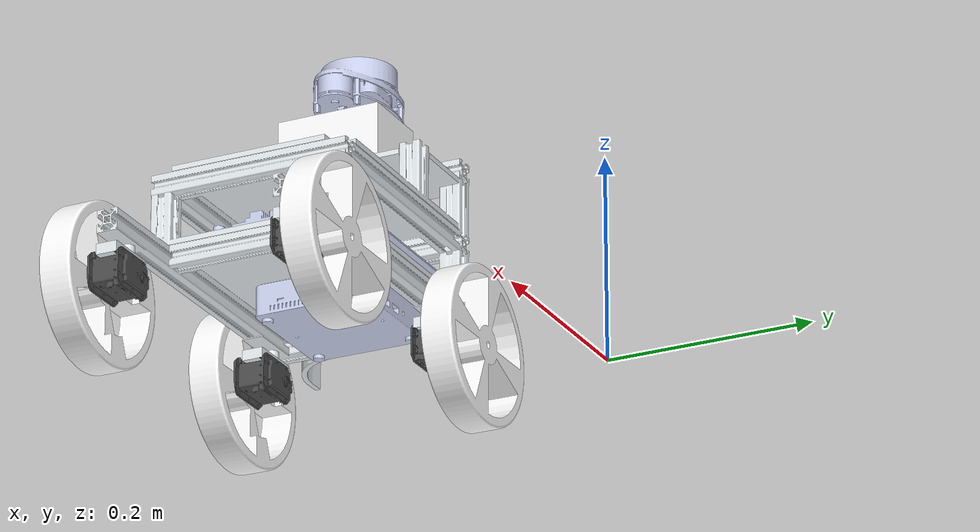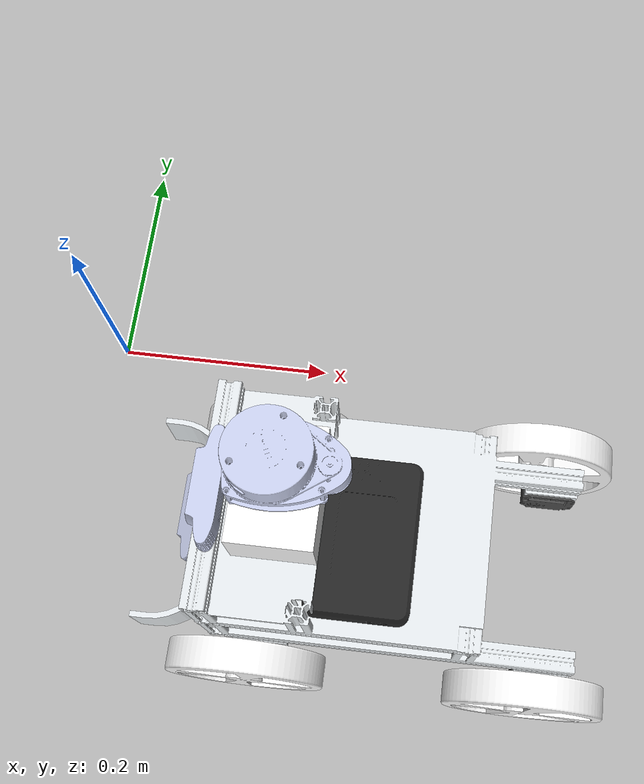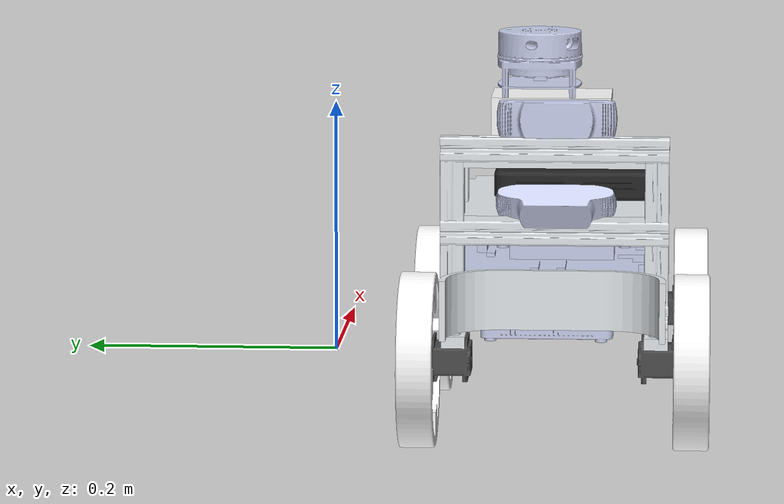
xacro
<?xml version="1.0" encoding="utf-8"?>
<robot
    name="model13" xmlns:xacro="http://ros.org/wiki/xacro">
  <xacro:arg name="camera_visual" default="false"/>
  <xacro:arg name="imu_visual"    default="false"/>

  <link name="base_footprint"/>

  <joint name="base_joint" type="fixed">
    <parent link="base_footprint"/>
    <child link="base_link" />
    <origin xyz="0 0 0.010" rpy="0 0 0"/>
  </joint>
  <link
    name="base_link">
    <inertial>
      <origin
        xyz="0.242554404351736 -0.171380969750206 0.047595679055481"
        rpy="0 0 0" />
      <mass
        value="1.682657590176" />
      <inertia
        ixx="0.00301207667908311"
        ixy="-5.22346847575621E-12"
        ixz="-3.07051462370208E-05"
        iyy="0.00535033223435682"
        iyz="1.30947753046905E-11"
        izz="0.00821505625174649" />
    </inertial>
    <visual>
      <origin
        xyz="0 0 0"
        rpy="0 0 0" />
      <geometry>
        <mesh
          filename="package://model13/meshes/base_link.STL" />
      </geometry>
      <material
        name="">
        <color
          rgba="0.898039215686275 0.917647058823529 0.929411764705882 1" />
      </material>
    </visual>
    <collision>
      <origin
        xyz="0 0 0"
        rpy="0 0 0" />
      <geometry>
        <mesh
          filename="package://model13/meshes/base_link.STL" />
      </geometry>
    </collision>
  </link>
  <link
    name="left_front_wheel_suspension">
    <inertial>
      <origin
        xyz="0.00153023333982277 -0.0049996602922521 5.55111512312578E-17"
        rpy="0 0 0" />
      <mass
        value="0.0239463719407107" />
      <inertia
        ixx="1.07207044697232E-06"
        ixy="-6.47020675138978E-21"
        ixz="1.88595219505723E-21"
        iyy="5.97423909283023E-06"
        iyz="-6.77966299199832E-23"
        izz="5.30127484486976E-06" />
    </inertial>
    <visual>
      <origin
        xyz="0 0 0"
        rpy="0 0 0" />
      <geometry>
        <mesh
          filename="package://model13/meshes/left_front_wheel_suspension.STL" />
      </geometry>
      <material
        name="">
        <color
          rgba="0.898039215686275 0.917647058823529 0.929411764705882 1" />
      </material>
    </visual>
    <collision>
      <origin
        xyz="0 0 0"
        rpy="0 0 0" />
      <geometry>
        <mesh
          filename="package://model13/meshes/left_front_wheel_suspension.STL" />
      </geometry>
    </collision>
  </link>
  <joint
    name="left_front_wheel_suspension_joint"
    type="prismatic">
    <origin
      xyz="0.17302 -0.25638 -0.025183"
      rpy="1.5708 -0.0058285 0" />
    <parent
      link="base_link" />
    <child
      link="left_front_wheel_suspension" />
    <axis
      xyz="0 1 0" />
    <limit
      lower="0"
      upper="0.008"
      effort="1000"
      velocity="1000" />
  </joint>
  <link
    name="left_front_wheel_motor">
    <inertial>
      <origin
        xyz="-2.79575138500757E-05 0.00194907944399025 -0.0129364619296243"
        rpy="0 0 0" />
      <mass
        value="0.0411670033844286" />
      <inertia
        ixx="1.15503164126153E-05"
        ixy="-2.96411876568248E-09"
        ixz="-1.64845302072221E-08"
        iyy="6.93803138202262E-06"
        iyz="1.56454773172923E-07"
        izz="9.5789890637299E-06" />
    </inertial>
    <visual>
      <origin
        xyz="0 0 0"
        rpy="0 0 0" />
      <geometry>
        <mesh
          filename="package://model13/meshes/left_front_wheel_motor.STL" />
      </geometry>
      <material
        name="">
        <color
          rgba="0.298039215686275 0.298039215686275 0.298039215686275 1" />
      </material>
    </visual>
    <collision>
      <origin
        xyz="0 0 0"
        rpy="0 0 0" />
      <geometry>
        <mesh
          filename="package://model13/meshes/left_front_wheel_motor.STL" />
      </geometry>
    </collision>
  </link>
  <joint
    name="left_front_wheel_motor_joint"
    type="fixed">
    <origin
      xyz="0.0003 -0.021785 -0.01"
      rpy="3.1416 0 -1.5708" />
    <parent
      link="left_front_wheel_suspension" />
    <child
      link="left_front_wheel_motor" />
    <axis
      xyz="0 0 0" />
    <limit
      effort="3.1"
      velocity="7" />
  </joint>
  <link
    name="left_front_wheel">
    <inertial>
      <origin
        xyz="0.0158391990185419 -9.0205620750794E-17 3.1641356201817E-15"
        rpy="0 0 0" />
      <mass
        value="0.22822169800504" />
      <inertia
        ixx="0.0007892115763339"
        ixy="-1.78671981515836E-20"
        ixz="3.96411412604527E-18"
        iyy="0.000410429434291421"
        iyz="-4.22736218585234E-19"
        izz="0.00041042943429142" />
    </inertial>
    <visual>
      <origin
        xyz="0 0 0"
        rpy="0 0 0" />
      <geometry>
        <mesh
          filename="package://model13/meshes/left_front_wheel.STL" />
      </geometry>
      <material
        name="">
        <color
          rgba="1 1 1 1" />
      </material>
    </visual>
    <collision>
      <origin
        xyz="0 0 0"
        rpy="0 0 0" />
      <geometry>
        <mesh
          filename="package://model13/meshes/left_front_wheel.STL" />
      </geometry>
    </collision>
  </link>
  <joint
    name="left_front_wheel_joint"
    type="continuous">
    <origin
      xyz="0 0.0133 -0.02475"
      rpy="1.565 1.5708 0" />
    <parent
      link="left_front_wheel_motor" />
    <child
      link="left_front_wheel" />
    <axis
      xyz="1 0 0" />
    <limit
      effort="3.1"
      velocity="7" />
  </joint>
  <link
    name="right_front_wheel_suspension">
    <inertial>
      <origin
        xyz="0.00153023333982275 -0.0049996602922521 -1.38777878078145E-17"
        rpy="0 0 0" />
      <mass
        value="0.0239463719407107" />
      <inertia
        ixx="1.07207044697232E-06"
        ixy="-5.83120972819257E-21"
        ixz="1.70935421665491E-21"
        iyy="5.97423909283023E-06"
        iyz="5.94336006908878E-23"
        izz="5.30127484486976E-06" />
    </inertial>
    <visual>
      <origin
        xyz="0 0 0"
        rpy="0 0 0" />
      <geometry>
        <mesh
          filename="package://model13/meshes/right_front_wheel_suspension.STL" />
      </geometry>
      <material
        name="">
        <color
          rgba="0.898039215686275 0.917647058823529 0.929411764705882 1" />
      </material>
    </visual>
    <collision>
      <origin
        xyz="0 0 0"
        rpy="0 0 0" />
      <geometry>
        <mesh
          filename="package://model13/meshes/right_front_wheel_suspension.STL" />
      </geometry>
    </collision>
  </link>
  <joint
    name="right_front_wheel_suspension_joint"
    type="prismatic">
    <origin
      xyz="0.17302 -0.086381 -0.025183"
      rpy="1.5708 -0.0058285 0" />
    <parent
      link="base_link" />
    <child
      link="right_front_wheel_suspension" />
    <axis
      xyz="0 1 0" />
    <limit
      lower="0"
      upper="0.008"
      effort="1000"
      velocity="1000" />
  </joint>
  <link
    name="right_front_wheel_motor">
    <inertial>
      <origin
        xyz="-2.79575138501312E-05 0.00194907944399025 -0.0129364619296243"
        rpy="0 0 0" />
      <mass
        value="0.0411670033844285" />
      <inertia
        ixx="1.15503164126153E-05"
        ixy="-2.96411876568305E-09"
        ixz="-1.64845302071889E-08"
        iyy="6.93803138202261E-06"
        iyz="1.56454773172932E-07"
        izz="9.5789890637299E-06" />
    </inertial>
    <visual>
      <origin
        xyz="0 0 0"
        rpy="0 0 0" />
      <geometry>
        <mesh
          filename="package://model13/meshes/right_front_wheel_motor.STL" />
      </geometry>
      <material
        name="">
        <color
          rgba="0.298039215686275 0.298039215686275 0.298039215686275 1" />
      </material>
    </visual>
    <collision>
      <origin
        xyz="0 0 0"
        rpy="0 0 0" />
      <geometry>
        <mesh
          filename="package://model13/meshes/right_front_wheel_motor.STL" />
      </geometry>
    </collision>
  </link>
  <joint
    name="right_front_wheel_motor_joint"
    type="fixed">
    <origin
      xyz="0.0003 -0.021785 0.01"
      rpy="0 0 1.5708" />
    <parent
      link="right_front_wheel_suspension" />
    <child
      link="right_front_wheel_motor" />
    <axis
      xyz="0 0 0" />
    <limit
      effort="3.1"
      velocity="7" />
  </joint>
  <link
    name="right_front_wheel">
    <inertial>
      <origin
        xyz="0.0158391990185425 1.38777878078145E-16 2.22044604925031E-16"
        rpy="0 0 0" />
      <mass
        value="0.22822169800504" />
      <inertia
        ixx="0.0007892115763339"
        ixy="-1.35535684545618E-20"
        ixz="-1.31839822152598E-18"
        iyy="0.000410429434291421"
        iyz="-3.43353054882062E-19"
        izz="0.00041042943429142" />
    </inertial>
    <visual>
      <origin
        xyz="0 0 0"
        rpy="0 0 0" />
      <geometry>
        <mesh
          filename="package://model13/meshes/right_front_wheel.STL" />
      </geometry>
      <material
        name="">
        <color
          rgba="1 1 1 1" />
      </material>
    </visual>
    <collision>
      <origin
        xyz="0 0 0"
        rpy="0 0 0" />
      <geometry>
        <mesh
          filename="package://model13/meshes/right_front_wheel.STL" />
      </geometry>
    </collision>
  </link>
  <joint
    name="right_front_wheel_joint"
    type="continuous">
    <origin
      xyz="0 0.0133 -0.02475"
      rpy="1.5766 1.5708 0" />
    <parent
      link="right_front_wheel_motor" />
    <child
      link="right_front_wheel" />
    <axis
      xyz="-1 0 0" />
    <limit
      effort="3.1"
      velocity="7" />
  </joint>
  <link
    name="camera">
    <inertial>
      <origin
        xyz="0.0517232586747523 0.00370936546682636 -0.010328956183931"
        rpy="0 0 0" />
      <mass
        value="0.0436119950287128" />
      <inertia
        ixx="4.29479133591152E-06"
        ixy="8.85791114048563E-10"
        ixz="1.01813691675744E-09"
        iyy="2.21058141232451E-05"
        iyz="2.17579681215257E-08"
        izz="2.35707058046403E-05" />
    </inertial>
    <visual>
      <origin
        xyz="0 0 0"
        rpy="0 0 0" />
      <geometry>
        <mesh
          filename="package://model13/meshes/camera.STL" />
      </geometry>
      <material
        name="">
        <color
          rgba="0.792156862745098 0.819607843137255 0.933333333333333 1" />
      </material>
    </visual>
    <collision>
      <origin
        xyz="0 0 0"
        rpy="0 0 0" />
      <geometry>
        <mesh
          filename="package://model13/meshes/camera.STL" />
      </geometry>
    </collision>
  </link>
  <joint
    name="camera"
    type="fixed">
    <origin
      xyz="0.12729 -0.12117 0.10055"
      rpy="-0.8208 0 -1.5708" />
    <parent
      link="base_link" />
    <child
      link="camera" />
    <axis
      xyz="0 0 0" />
  </joint>
  <link
    name="myrio">
    <inertial>
      <origin
        xyz="-5.92450278861789E-05 -0.0201677348757046 0.00039132896938357"
        rpy="0 0 0" />
      <mass
        value="0.272795037150939" />
      <inertia
        ixx="0.000426495369649312"
        ixy="-1.33941181514062E-07"
        ixz="-1.32777557424165E-06"
        iyy="0.000584026336355448"
        iyz="-9.78175021683237E-08"
        izz="0.000183119671370759" />
    </inertial>
    <visual>
      <origin
        xyz="0 0 0"
        rpy="0 0 0" />
      <geometry>
        <mesh
          filename="package://model13/meshes/myrio.STL" />
      </geometry>
      <material
        name="">
        <color
          rgba="0.149019607843137 0.149019607843137 0.149019607843137 1" />
      </material>
    </visual>
    <collision>
      <origin
        xyz="0 0 0"
        rpy="0 0 0" />
      <geometry>
        <mesh
          filename="package://model13/meshes/myrio.STL" />
      </geometry>
    </collision>
  </link>
  <joint
    name="myrio"
    type="fixed">
    <origin
      xyz="0.261041499396395 -0.185631459517847 0.113328386370531"
      rpy="1.5707963267949 -0.0058284783149254 0" />
    <parent
      link="base_link" />
    <child
      link="myrio" />
    <axis
      xyz="0 0 0" />
  </joint>
  <link
    name="intel">
    <inertial>
      <origin
        xyz="-5.69397911928671E-05 0.0158670533538889 0.0550835448418936"
        rpy="0 0 0" />
      <mass
        value="0.39954289648303" />
      <inertia
        ixx="0.00043202912775909"
        ixy="-1.83383124387174E-07"
        ixz="-3.17164968943055E-07"
        iyy="0.000836965270424737"
        iyz="4.77447001830875E-07"
        izz="0.000473016843888514" />
    </inertial>
    <visual>
      <origin
        xyz="0 0 0"
        rpy="0 0 0" />
      <geometry>
        <mesh
          filename="package://model13/meshes/intel.STL" />
      </geometry>
      <material
        name="">
        <color
          rgba="0.792156862745098 0.819607843137255 0.933333333333333 1" />
      </material>
    </visual>
    <collision>
      <origin
        xyz="0 0 0"
        rpy="0 0 0" />
      <geometry>
        <mesh
          filename="package://model13/meshes/intel.STL" />
      </geometry>
    </collision>
  </link>
  <joint
    name="intel"
    type="fixed">
    <origin
      xyz="0.205522597365492 -0.109366659682657 -0.0259953857991605"
      rpy="1.5707963267949 -0.00582847831492263 0" />
    <parent
      link="base_link" />
    <child
      link="intel" />
    <axis
      xyz="0 0 0" />
  </joint>
  <link
    name="nvidia">
    <inertial>
      <origin
        xyz="-0.0188105898914265 0.010249818915933 -0.167172080419149"
        rpy="0 0 0" />
      <mass
        value="0.240394331617002" />
      <inertia
        ixx="0.000357684284600866"
        ixy="-3.61913558198442E-09"
        ixz="-2.92942384657851E-07"
        iyy="0.000746477971691014"
        iyz="4.03533275235887E-06"
        izz="0.000399399110650853" />
    </inertial>
    <visual>
      <origin
        xyz="0 0 0"
        rpy="0 0 0" />
      <geometry>
        <mesh
          filename="package://model13/meshes/nvidia.STL" />
      </geometry>
      <material
        name="">
        <color
          rgba="0.792156862745098 0.819607843137255 0.933333333333333 1" />
      </material>
    </visual>
    <collision>
      <origin
        xyz="0 0 0"
        rpy="0 0 0" />
      <geometry>
        <mesh
          filename="package://model13/meshes/nvidia.STL" />
      </geometry>
    </collision>
  </link>
  <joint
    name="nvidia"
    type="fixed">
    <origin
      xyz="0.418367655264176 -0.191953362348841 0.0363810058695082"
      rpy="-1.57662480510981 0 -1.5707963267949" />
    <parent
      link="base_link" />
    <child
      link="nvidia" />
    <axis
      xyz="0 0 0" />
  </joint>
  <link
    name="pusher ">
    <inertial>
      <origin
        xyz="2.1551056943736E-06 -0.018651937691236 -0.00500218320308374"
        rpy="0 0 0" />
      <mass
        value="0.178349620601898" />
      <inertia
        ixx="0.000104963063913374"
        ixy="1.02060378727173E-08"
        ixz="-1.01550125204327E-09"
        iyy="0.000790801176064351"
        iyz="2.89504152977984E-09"
        izz="0.000821450762381197" />
    </inertial>
    <visual>
      <origin
        xyz="0 0 0"
        rpy="0 0 0" />
      <geometry>
        <mesh
          filename="package://model13/meshes/pusher .STL" />
      </geometry>
      <material
        name="">
        <color
          rgba="0.898039215686275 0.917647058823529 0.929411764705882 1" />
      </material>
    </visual>
    <collision>
      <origin
        xyz="0 0 0"
        rpy="0 0 0" />
      <geometry>
        <mesh
          filename="package://model13/meshes/pusher .STL" />
      </geometry>
    </collision>
  </link>
  <joint
    name="pusher "
    type="fixed">
    <origin
      xyz="0.12800972713721 -0.171668848940021 0.00555337054790796"
      rpy="3.13576417527487 0 1.5707963267949" />
    <parent
      link="base_link" />
    <child
      link="pusher " />
    <axis
      xyz="0 0 0" />
    <limit
      lower="0"
      upper="0"
      effort="0"
      velocity="0" />
  </joint>
  <link
    name="camera2">
    <inertial>
      <origin
        xyz="0.0517232586747521 0.023709025756193 0.00928761272236944"
        rpy="0 0 0" />
      <mass
        value="0.0436119950287123" />
      <inertia
        ixx="4.29479133591141E-06"
        ixy="8.85791114061599E-10"
        ixz="1.01813691676042E-09"
        iyy="2.21058141232443E-05"
        iyz="2.17579681215268E-08"
        izz="2.35707058046395E-05" />
    </inertial>
    <visual>
      <origin
        xyz="0 0 0"
        rpy="0 0 0" />
      <geometry>
        <mesh
          filename="package://model13/meshes/camera2.STL" />
      </geometry>
      <material
        name="">
        <color
          rgba="0.792156862745098 0.819607843137255 0.933333333333333 1" />
      </material>
    </visual>
    <collision>
      <origin
        xyz="0 0 0"
        rpy="0 0 0" />
      <geometry>
        <mesh
          filename="package://model13/meshes/camera2.STL" />
      </geometry>
    </collision>
  </link>
  <joint
    name="camera2"
    type="fixed">
    <origin
      xyz="0.12829 -0.12117 0.18555"
      rpy="-1.5708 0 -1.5708" />
    <parent
      link="base_link" />
    <child
      link="camera2" />
    <axis
      xyz="0 0 0" />
  </joint>
  <link
    name="left_rear_wheel_suspension">
    <inertial>
      <origin
        xyz="0.00153023333982266 -0.00499966029225212 0"
        rpy="0 0 0" />
      <mass
        value="0.0239463719407108" />
      <inertia
        ixx="1.07207044697232E-06"
        ixy="7.55670848597818E-21"
        ixz="7.36525819016059E-22"
        iyy="5.97423909283024E-06"
        iyz="1.98119697632812E-22"
        izz="5.30127484486976E-06" />
    </inertial>
    <visual>
      <origin
        xyz="0 0 0"
        rpy="0 0 0" />
      <geometry>
        <mesh
          filename="package://model13/meshes/left_rear_wheel_suspension.STL" />
      </geometry>
      <material
        name="">
        <color
          rgba="0.898039215686275 0.917647058823529 0.929411764705882 1" />
      </material>
    </visual>
    <collision>
      <origin
        xyz="0 0 0"
        rpy="0 0 0" />
      <geometry>
        <mesh
          filename="package://model13/meshes/left_rear_wheel_suspension.STL" />
      </geometry>
    </collision>
  </link>
  <joint
    name="left_rear_wheel_suspension_joint"
    type="prismatic">
    <origin
      xyz="0.43301 -0.25638 -0.023763"
      rpy="1.5708 -0.0058285 0" />
    <parent
      link="base_link" />
    <child
      link="left_rear_wheel_suspension" />
    <axis
      xyz="0 1 0" />
    <limit
      lower="0"
      upper="0.008"
      effort="1000"
      velocity="1000" />
  </joint>
  <link
    name="left_rear_wheel_motor">
    <inertial>
      <origin
        xyz="-2.79575138500757E-05 0.00194907944399031 -0.0129364619296243"
        rpy="0 0 0" />
      <mass
        value="0.0411670033844285" />
      <inertia
        ixx="1.15503164126153E-05"
        ixy="-2.96411876568271E-09"
        ixz="-1.6484530207215E-08"
        iyy="6.93803138202262E-06"
        iyz="1.56454773172926E-07"
        izz="9.57898906372991E-06" />
    </inertial>
    <visual>
      <origin
        xyz="0 0 0"
        rpy="0 0 0" />
      <geometry>
        <mesh
          filename="package://model13/meshes/left_rear_wheel_motor.STL" />
      </geometry>
      <material
        name="">
        <color
          rgba="0.298039215686275 0.298039215686275 0.298039215686275 1" />
      </material>
    </visual>
    <collision>
      <origin
        xyz="0 0 0"
        rpy="0 0 0" />
      <geometry>
        <mesh
          filename="package://model13/meshes/left_rear_wheel_motor.STL" />
      </geometry>
    </collision>
  </link>
  <joint
    name="left_rear_wheel_motor_joint"
    type="fixed">
    <origin
      xyz="-0.0003 -0.021785 -0.01"
      rpy="3.1416 0 -1.5708" />
    <parent
      link="left_rear_wheel_suspension" />
    <child
      link="left_rear_wheel_motor" />
    <axis
      xyz="0 0 0" />
    <limit
      effort="3.1"
      velocity="7" />
  </joint>
  <link
    name="left_rear_wheel">
    <inertial>
      <origin
        xyz="0.0158391990185435 -2.42861286636753E-16 3.05311331771918E-15"
        rpy="0 0 0" />
      <mass
        value="0.22822169800504" />
      <inertia
        ixx="0.0007892115763339"
        ixy="-4.80833879957454E-21"
        ixz="3.92655864930641E-18"
        iyy="0.000410429434291421"
        iyz="-3.4423948372007E-19"
        izz="0.00041042943429142" />
    </inertial>
    <visual>
      <origin
        xyz="0 0 0"
        rpy="0 0 0" />
      <geometry>
        <mesh
          filename="package://model13/meshes/left_rear_wheel.STL" />
      </geometry>
      <material
        name="">
        <color
          rgba="1 1 1 1" />
      </material>
    </visual>
    <collision>
      <origin
        xyz="0 0 0"
        rpy="0 0 0" />
      <geometry>
        <mesh
          filename="package://model13/meshes/left_rear_wheel.STL" />
      </geometry>
    </collision>
  </link>
  <joint
    name="left_rear_wheel_joint"
    type="continuous">
    <origin
      xyz="0 0.0133 -0.02475"
      rpy="1.565 1.5708 0" />
    <parent
      link="left_rear_wheel_motor" />
    <child
      link="left_rear_wheel" />
    <axis
      xyz="1 0 0" />
    <limit
      effort="3.1"
      velocity="7" />
  </joint>
  <link
    name="imu">
    <inertial>
      <origin
        xyz="-1.38777878078145E-16 -0.0149989808767562 0.000174850389471126"
        rpy="0 0 0" />
      <mass
        value="0.357" />
      <inertia
        ixx="0.00022015"
        ixy="1.27359651722959E-20"
        ixz="1.79584324944282E-20"
        iyy="0.000443265298276307"
        iyz="-8.32231306955799E-07"
        izz="0.000371884701723694" />
    </inertial>
    <visual>
      <origin
        xyz="0 0 0"
        rpy="0 0 0" />
      <geometry>
        <mesh
          filename="package://model13/meshes/imu.STL" />
      </geometry>
      <material
        name="">
        <color
          rgba="1 1 1 1" />
      </material>
    </visual>
    <collision>
      <origin
        xyz="0 0 0"
        rpy="0 0 0" />
      <geometry>
        <mesh
          filename="package://model13/meshes/imu.STL" />
      </geometry>
    </collision>
  </link>
  <joint
    name="imu"
    type="fixed">
    <origin
      xyz="0.191905075680549 -0.167631459517847 0.165926321909531"
      rpy="1.57662480510981 0 1.5707963267949" />
    <parent
      link="base_link" />
    <child
      link="imu" />
    <axis
      xyz="0 0 0" />
  </joint>
  <link
    name="lidar">
    <inertial>
      <origin
        xyz="-0.0784930233660221 0.704427434033768 0.133449662293357"
        rpy="0 0 0" />
      <mass
        value="0.0730845732929087" />
      <inertia
        ixx="1.95808759390575E-05"
        ixy="-4.28391154523504E-07"
        ixz="1.03933564372488E-07"
        iyy="4.14184520273689E-05"
        iyz="-9.42736038261699E-09"
        izz="2.41250082140248E-05" />
    </inertial>
    <visual>
      <origin
        xyz="0 0 0"
        rpy="0 0 0" />
      <geometry>
        <mesh
          filename="package://model13/meshes/lidar.STL" />
      </geometry>
      <material
        name="">
        <color
          rgba="0.792156862745098 0.819607843137255 0.933333333333333 1" />
      </material>
    </visual>
    <collision>
      <origin
        xyz="0 0 0"
        rpy="0 0 0" />
      <geometry>
        <mesh
          filename="package://model13/meshes/lidar.STL" />
      </geometry>
    </collision>
  </link>
  <joint
    name="lidar"
    type="fixed">
    <origin
      xyz="0.143389290477949 -0.668639214935676 0.0942405393952655"
      rpy="-1.5707963267949 -1.55913937016508 1.5707963267949" />
    <parent
      link="imu" />
    <child
      link="lidar" />
    <axis
      xyz="0 0 0" />
  </joint>
  <link
    name="right_rear_wheel_suspension">
    <inertial>
      <origin
        xyz="0.00153023333982261 -0.00499966029225211 1.38777878078145E-17"
        rpy="0 0 0" />
      <mass
        value="0.0239463719407107" />
      <inertia
        ixx="1.07207044697232E-06"
        ixy="7.23700317922644E-21"
        ixz="1.27016794423617E-21"
        iyy="5.97423909283022E-06"
        iyz="7.63453947512924E-23"
        izz="5.30127484486975E-06" />
    </inertial>
    <visual>
      <origin
        xyz="0 0 0"
        rpy="0 0 0" />
      <geometry>
        <mesh
          filename="package://model13/meshes/right_rear_wheel_suspension.STL" />
      </geometry>
      <material
        name="">
        <color
          rgba="0.898039215686275 0.917647058823529 0.929411764705882 1" />
      </material>
    </visual>
    <collision>
      <origin
        xyz="0 0 0"
        rpy="0 0 0" />
      <geometry>
        <mesh
          filename="package://model13/meshes/right_rear_wheel_suspension.STL" />
      </geometry>
    </collision>
  </link>
  <joint
    name="right_rear_wheel_suspension_joint"
    type="prismatic">
    <origin
      xyz="0.43301 -0.086381 -0.023668"
      rpy="1.5708 -0.0058285 0" />
    <parent
      link="base_link" />
    <child
      link="right_rear_wheel_suspension" />
    <axis
      xyz="0 1 0" />
    <limit
      lower="0"
      upper="0.008"
      effort="1000"
      velocity="1000" />
  </joint>
  <link
    name="right_rear_wheel_motor">
    <inertial>
      <origin
        xyz="-2.79575138501173E-05 0.00194907944399025 -0.0129364619296243"
        rpy="0 0 0" />
      <mass
        value="0.0411670033844285" />
      <inertia
        ixx="1.15503164126153E-05"
        ixy="-2.9641187656826E-09"
        ixz="-1.64845302071905E-08"
        iyy="6.93803138202261E-06"
        iyz="1.56454773172915E-07"
        izz="9.57898906372989E-06" />
    </inertial>
    <visual>
      <origin
        xyz="0 0 0"
        rpy="0 0 0" />
      <geometry>
        <mesh
          filename="package://model13/meshes/right_rear_wheel_motor.STL" />
      </geometry>
      <material
        name="">
        <color
          rgba="0.298039215686275 0.298039215686275 0.298039215686275 1" />
      </material>
    </visual>
    <collision>
      <origin
        xyz="0 0 0"
        rpy="0 0 0" />
      <geometry>
        <mesh
          filename="package://model13/meshes/right_rear_wheel_motor.STL" />
      </geometry>
    </collision>
  </link>
  <joint
    name="right_rear_wheel_motor_joint"
    type="fixed">
    <origin
      xyz="-0.0003 -0.021785 0.01"
      rpy="0 0 1.5708" />
    <parent
      link="right_rear_wheel_suspension" />
    <child
      link="right_rear_wheel_motor" />
    <axis
      xyz="0 0 0" />
    <limit
      effort="3.1"
      velocity="7" />
  </joint>
  <link
    name="right_rear_wheel">
    <inertial>
      <origin
        xyz="0.0158391990185425 1.04083408558608E-16 2.22044604925031E-16"
        rpy="0 0 0" />
      <mass
        value="0.22822169800504" />
      <inertia
        ixx="0.000789211576333899"
        ixy="-7.31859879096361E-21"
        ixz="-1.32493863952895E-18"
        iyy="0.000410429434291421"
        iyz="-3.50989277518502E-19"
        izz="0.00041042943429142" />
    </inertial>
    <visual>
      <origin
        xyz="0 0 0"
        rpy="0 0 0" />
      <geometry>
        <mesh
          filename="package://model13/meshes/right_rear_wheel.STL" />
      </geometry>
      <material
        name="">
        <color
          rgba="1 1 1 1" />
      </material>
    </visual>
    <collision>
      <origin
        xyz="0 0 0"
        rpy="0 0 0" />
      <geometry>
        <mesh
          filename="package://model13/meshes/right_rear_wheel.STL" />
      </geometry>
    </collision>
  </link>
  <joint
    name="right_rear_wheel_joint"
    type="continuous">
    <origin
      xyz="0 0.0133 -0.02475"
      rpy="1.5766 1.5708 0" />
    <parent
      link="right_rear_wheel_motor" />
    <child
      link="right_rear_wheel" />
    <axis
      xyz="-1 0 0" />
    <limit
      effort="3.1"
      velocity="7" />
  </joint>

<transmission name="wheel_front_left_transmission">
    <type>transmission_interface/SimpleTransmission</type>
    <joint name="left_front_wheel_joint">
      <hardwareInterface>hardware_interface/EffortJointInterface</hardwareInterface>
    </joint>
    <actuator name="wheel_front_left_motor">
      <hardwareInterface>hardware_interface/EffortJointInterface</hardwareInterface>
      <mechanicalReduction>1</mechanicalReduction>
    </actuator>
  </transmission>

  <transmission name="wheel_front_right_transmission">
    <type>transmission_interface/SimpleTransmission</type>
    <joint name="right_front_wheel_joint">
      <hardwareInterface>hardware_interface/EffortJointInterface</hardwareInterface>
    </joint>
    <actuator name="wheel_front_right_motor">
      <hardwareInterface>hardware_interface/EffortJointInterface</hardwareInterface>
      <mechanicalReduction>1</mechanicalReduction>
    </actuator>
  </transmission>

<transmission name="wheel_rear_left_transmission">
    <type>transmission_interface/SimpleTransmission</type>
    <joint name="left_rear_wheel_joint">
      <hardwareInterface>hardware_interface/EffortJointInterface</hardwareInterface>
    </joint>
    <actuator name="wheel_rear_left_motor">
      <hardwareInterface>hardware_interface/EffortJointInterface</hardwareInterface>
      <mechanicalReduction>1</mechanicalReduction>
    </actuator>
  </transmission>

  <transmission name="wheel_rear_right_transmission">
    <type>transmission_interface/SimpleTransmission</type>
    <joint name="right_rear_wheel_joint">
      <hardwareInterface>hardware_interface/EffortJointInterface</hardwareInterface>
    </joint>
    <actuator name="wheel_rear_right_motor">
      <hardwareInterface>hardware_interface/EffortJointInterface</hardwareInterface>
      <mechanicalReduction>1</mechanicalReduction>
    </actuator>
  </transmission>

<transmission name="left_front_wheel_suspension_transmission">
    <type>transmission_interface/SimpleTransmission</type>
    <joint name="left_front_wheel_suspension_joint">
      <hardwareInterface>hardware_interface/EffortJointInterface</hardwareInterface>
    </joint>
    <actuator name="left_suspension_actuator">
      <hardwareInterface>hardware_interface/EffortJointInterface</hardwareInterface>
      <mechanicalReduction>1</mechanicalReduction>
    </actuator>
  </transmission>

<transmission name="left_rear_wheel_suspension_transmission">
    <type>transmission_interface/SimpleTransmission</type>
    <joint name="left_rear_wheel_suspension_joint">
      <hardwareInterface>hardware_interface/EffortJointInterface</hardwareInterface>
    </joint>
    <actuator name="left_suspension_actuator">
      <hardwareInterface>hardware_interface/EffortJointInterface</hardwareInterface>
      <mechanicalReduction>1</mechanicalReduction>
    </actuator>
  </transmission>

  <transmission name="right_front_wheel_suspension_transmission">
    <type>transmission_interface/SimpleTransmission</type>
    <joint name="right_front_wheel_suspension_joint">
      <hardwareInterface>hardware_interface/EffortJointInterface</hardwareInterface>
    </joint>
    <actuator name="right_suspension_actuator">
      <hardwareInterface>hardware_interface/EffortJointInterface</hardwareInterface>
      <mechanicalReduction>1</mechanicalReduction>
    </actuator>
  </transmission>

  <transmission name="right_rear_wheel_suspension_transmission">
    <type>transmission_interface/SimpleTransmission</type>
    <joint name="right_rear_wheel_suspension_joint">
      <hardwareInterface>hardware_interface/EffortJointInterface</hardwareInterface>
    </joint>
    <actuator name="right_suspension_actuator">
      <hardwareInterface>hardware_interface/EffortJointInterface</hardwareInterface>
      <mechanicalReduction>1</mechanicalReduction>
    </actuator>
  </transmission>

   <gazebo>
    <plugin name="gazebo_ros_control" filename="libgazebo_ros_control.so">
      <robotNamespace>/model13</robotNamespace>
      <robotSimType>gazebo_ros_control/DefaultRobotHWSim</robotSimType>
    </plugin>
  </gazebo>
 <gazebo reference="base_link">
    <mu1>1.0</mu1>
    <mu2>1.0</mu2>
    <material>Gazebo/Orange</material>
  </gazebo>

<gazebo reference="left_front_wheel">
    <mu1>1.0</mu1>
    <mu2>1.0</mu2>
    <fdir1>1 0 0</fdir1>
    <material>Gazebo/FlatBlack</material>
  </gazebo>

  <gazebo reference="right_front_wheel">
    <mu1>1.0</mu1>
    <mu2>1.0</mu2>
    <fdir1>1 0 0</fdir1>
    <material>Gazebo/FlatBlack</material>
  </gazebo>
<gazebo reference="left_rear_wheel">
    <mu1>1.0</mu1>
    <mu2>1.0</mu2>
    <fdir1>1 0 0</fdir1>
    <material>Gazebo/FlatBlack</material>
  </gazebo>

  <gazebo reference="right_rear_wheel">
    <mu1>1.0</mu1>
    <mu2>1.0.0</mu2>
    <fdir1>1 0 0</fdir1>
    <material>Gazebo/FlatBlack</material>
  </gazebo>

  <gazebo reference="left_front_wheel_suspension">
    <mu1>0.2</mu1>
    <mu2>0.2</mu2>
    <kd>50000.0</kd>
    <kp>10.0</kp>
    <material>Gazebo/Red</material>
  </gazebo>
  <gazebo reference="right_front_wheel_suspension">
    <mu1>0.2</mu1>
    <mu2>0.2</mu2>
    <kd>50000.0</kd>
    <kp>10.0</kp>
    <material>Gazebo/Red</material>
  </gazebo>
   <gazebo reference="left_rear_wheel_suspension">
    <mu1>0.2</mu1>
    <mu2>0.2</mu2>
    <kd>50000.0</kd>
    <kp>10.0</kp>
    <material>Gazebo/Red</material>
  </gazebo>
  <gazebo reference="right_rear_wheel_suspension">
    <mu1>0.2</mu1>
    <mu2>0.2</mu2>
    <kd>50000.0</kd>
    <kp>10.0</kp>
    <material>Gazebo/Red</material>
  </gazebo>
  <gazebo reference="right_rear_wheel_motor">
    <mu1>1.0</mu1>
    <mu2>1.0</mu2>
    <material>Gazebo/Red</material>
  </gazebo>
  <gazebo reference="right_front_wheel_motor">
    <mu1>1.0</mu1>
    <mu2>1.0</mu2>
    <material>Gazebo/Red</material>
  </gazebo>
  <gazebo reference="left_rear_wheel_motor">
    <mu1>1.0</mu1>
    <mu2>1.0</mu2>
    <material>Gazebo/Red</material>
  </gazebo>
  <gazebo reference="left_front_wheel_motor">
    <mu1>1.0</mu1>
    <mu2>1.0</mu2>
    <material>Gazebo/Red</material>
  </gazebo>
<gazebo reference="camera">
    <sensor type="depth" name="realsense_R200">
      <always_on>true</always_on>
      <visualize>$(arg camera_visual)</visualize>
      <camera>
	  <pose>0.04 0 0 1.57 1.57 0</pose>
          <horizontal_fov>1.3439</horizontal_fov>
          <image>
              <width>1920</width>
              <height>1080</height>
              <format>R8G8B8</format>
          </image>
          <depth_camera></depth_camera>
          <clip>
              <near>0.03</near>
              <far>100</far>
          </clip>
      </camera>
      <plugin name="camera_controller" filename="libgazebo_ros_openni_kinect.so">
        <baseline>0.2</baseline>
        <alwaysOn>true</alwaysOn>
        <updateRate>30.0</updateRate>
        <cameraName>camera</cameraName>
        <frameName>camera_rgb_optical_frame</frameName>
        <imageTopicName>rgb/image_raw</imageTopicName>
        <depthImageTopicName>depth/image_raw</depthImageTopicName>
        <pointCloudTopicName>depth/points</pointCloudTopicName>
        <cameraInfoTopicName>rgb/camera_info</cameraInfoTopicName>
        <depthImageCameraInfoTopicName>depth/camera_info</depthImageCameraInfoTopicName>
        <pointCloudCutoff>0.4</pointCloudCutoff>
            <hackBaseline>0.07</hackBaseline>
            <distortionK1>0.0</distortionK1>
            <distortionK2>0.0</distortionK2>
            <distortionK3>0.0</distortionK3>
            <distortionT1>0.0</distortionT1>
            <distortionT2>0.0</distortionT2>
        <CxPrime>0.0</CxPrime>
        <Cx>0.0</Cx>
        <Cy>0.0</Cy>
        <focalLength>0</focalLength>
        <hackBaseline>0</hackBaseline>
      </plugin>
    </sensor>
  </gazebo>

  <gazebo reference="camera2">
    <sensor type="depth" name="realsense_R200">
      <always_on>true</always_on>
      <visualize>$(arg camera_visual)</visualize>
      <camera>
	  <pose>0.04 0 0 1.57 1.57 0</pose>
          <horizontal_fov>1.3439</horizontal_fov>
          <image>
              <width>1920</width>
              <height>1080</height>
              <format>R8G8B8</format>
          </image>
          <depth_camera></depth_camera>
          <clip>
              <near>0.03</near>
              <far>100</far>
          </clip>
      </camera>
      <plugin name="camera_controller" filename="libgazebo_ros_openni_kinect.so">
        <baseline>0.2</baseline>
        <alwaysOn>true</alwaysOn>
        <updateRate>30.0</updateRate>
        <cameraName>camera2</cameraName>
        <frameName>camera_rgb_optical_frame</frameName>
        <imageTopicName>rgb/image_raw</imageTopicName>
        <depthImageTopicName>depth/image_raw</depthImageTopicName>
        <pointCloudTopicName>depth/points</pointCloudTopicName>
        <cameraInfoTopicName>rgb/camera_info</cameraInfoTopicName>
        <depthImageCameraInfoTopicName>depth/camera_info</depthImageCameraInfoTopicName>
        <pointCloudCutoff>0.4</pointCloudCutoff>
            <hackBaseline>0.07</hackBaseline>
            <distortionK1>0.0</distortionK1>
            <distortionK2>0.0</distortionK2>
            <distortionK3>0.0</distortionK3>
            <distortionT1>0.0</distortionT1>
            <distortionT2>0.0</distortionT2>
        <CxPrime>0.0</CxPrime>
        <Cx>0.0</Cx>
        <Cy>0.0</Cy>
        <focalLength>0</focalLength>
        <hackBaseline>0</hackBaseline>
      </plugin>
    </sensor>
  </gazebo>
</robot>
